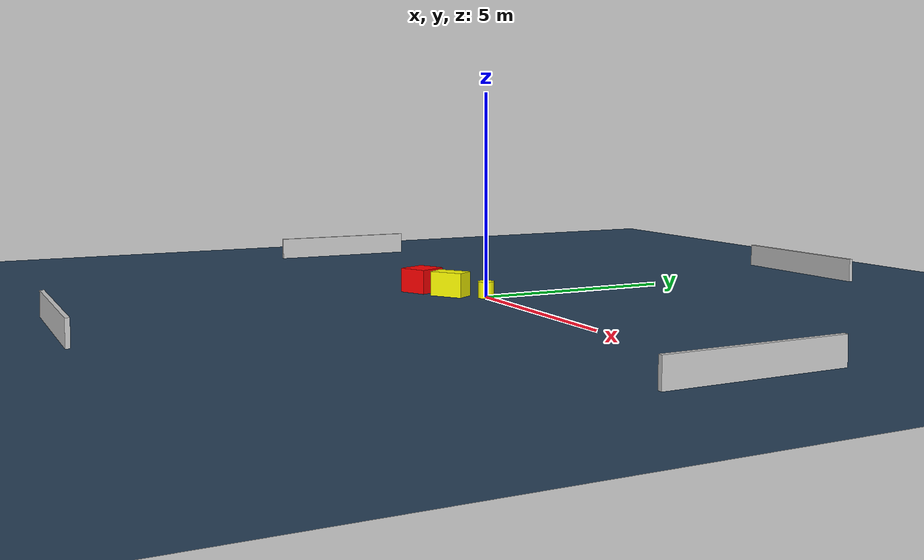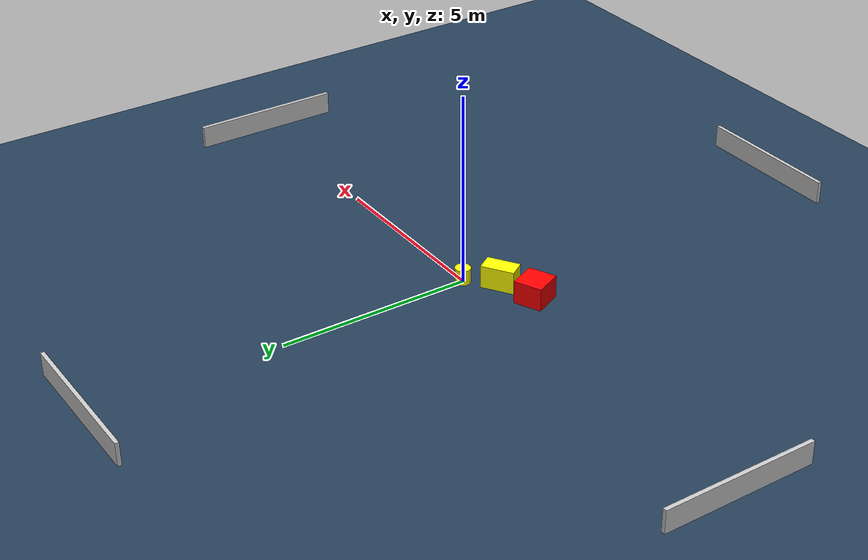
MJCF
<?xml version="1.0" ?>
<mujoco model="generated_environment">
  <option timestep="0.01" integrator="RK4" cone="elliptic"/>
  <default>
    <geom density="1"/>
  </default>
  <asset>
    <texture builtin="gradient" height="3072" name="skybox" rgb1="0.3 0.5 0.7" rgb2="0 0 0" type="skybox" width="512"/>
    <texture builtin="checker" height="300" name="groundplane" rgb1="0.2 0.3 0.4" rgb2="0.1 0.2 0.3" type="2d" width="300"/>
    <material name="groundplane" reflectance="0.2" texrepeat="5 5" texture="groundplane"/>
  </asset>
  <worldbody>
    <light dir="0 0 -1" directional="true" pos="0 0 1.5"/>
    <geom condim="3" friction="0.5 0.005 0.001" material="groundplane" name="floor" pos="0 0 0" size="0 0 0.05" type="plane"/>
    <body name="walls">
      <geom name="wall_1" condim="4" pos="-10.0 0.0 0.3" rgba="0.800000011920929 0.800000011920929 0.800000011920929 1.0" size="0.05 2.0 0.3" type="box"/>
      <geom name="wall_2" condim="4" pos="10.0 0.0 0.3" rgba="0.800000011920929 0.800000011920929 0.800000011920929 1.0" size="0.05 2.0 0.3" type="box"/>
      <geom name="wall_3" condim="4" pos="0.0 -10.0 0.3" rgba="0.800000011920929 0.800000011920929 0.800000011920929 1.0" size="2.0 0.05 0.3" type="box"/>
      <geom name="wall_4" condim="4" pos="0.0 10.0 0.3" rgba="0.800000011920929 0.800000011920929 0.800000011920929 1.0" size="2.0 0.05 0.3" type="box"/>
    </body>
    <body name="robot">
      <joint name="joint_x" type="slide" pos="0 0 0" axis="1 0 0"/>
      <joint name="joint_y" type="slide" pos="0 0 0" axis="0 1 0"/>
      <geom name="robot" type="cylinder" pos="0.0 0.0 0.2" size="0.2 0.2 0.0" mass="5.0" friction="1.0 0.005 0.0001" condim="4" rgba="1.0 1.0 0.0 1.0"/>
    </body>
    <body name="obstacle_1_movable">
      <geom name="obstacle_1_movable" condim="4" pos="-0.6892148083672431 -0.6355438113302145 0.3" euler="0 0 32.98280278351335" friction="0.0 0.005 0.001" rgba="1.0 1.0 0.0 1.0" size="0.4312822017585533 0.23437781736163493 0.3" type="box" mass="0.1"/>
      <joint type="free"/>
    </body>
    <body name="obstacle_2_static">
      <geom name="obstacle_2_static" condim="4" pos="-1.6631277358375622 -0.9625260192616634 0.3" euler="0 0 204.56811806085253" friction="0.0 0.005 0.001" rgba="1.0 0.0 0.0 1.0" size="0.3696294444857141 0.37580504605358817 0.3" type="box"/>
    </body>
  </worldbody>
  <actuator>
    <motor name="actuator_x" joint="joint_x" gear="1" ctrlrange="-1 1"/>
    <motor name="actuator_y" joint="joint_y" gear="1" ctrlrange="-1 1"/>
  </actuator>
</mujoco>
